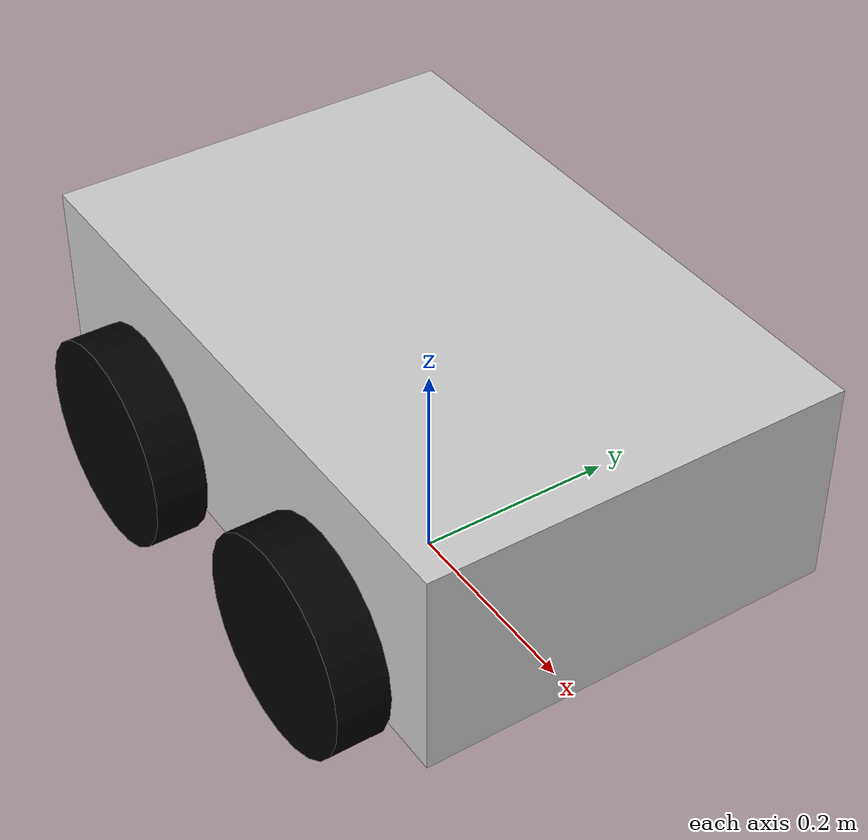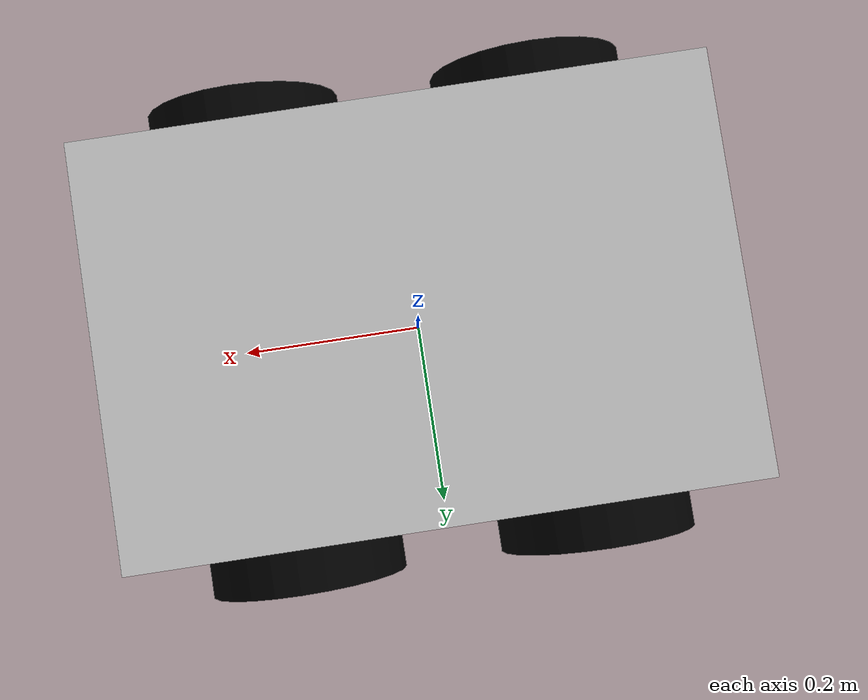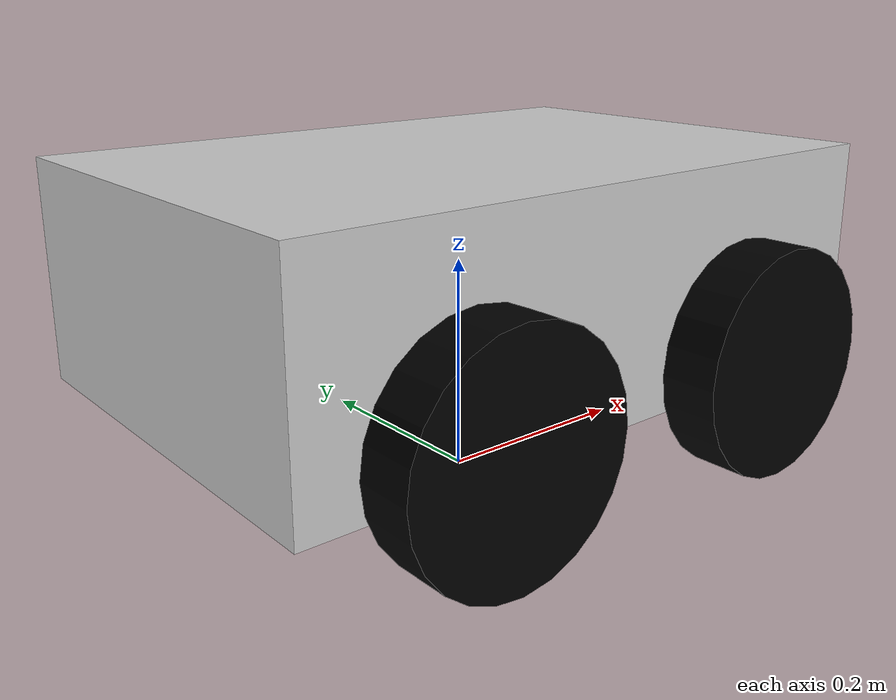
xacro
<?xml version="1.0"?>
<robot name="car" xmlns:xacro="http://www.ros.org/wiki/xacro">

    <xacro:include filename="$(find car_description)/urdf/properties.xacro"/>
    <xacro:include filename="$(find car_description)/urdf/ros2_control.xacro"/>

    <xacro:property name="base_length" value="0.6" />
    <xacro:property name="base_width" value="0.4" />
    <xacro:property name="base_height" value="0.2" />
    <xacro:property name="wheel_radius" value="0.1" />
    <xacro:property name="wheel_length" value="0.05" />

    <xacro:macro name="wheel_link" params="prefix">
        <link name="${prefix}_wheel_link">
            <visual>
                <geometry>
                    <cylinder radius="${wheel_radius}" length="${wheel_length}" />
                </geometry>
                <origin xyz="0 0 0" rpy="${pi / 2.0} 0 0"/>
                <material name="black"/>
            </visual>
            <collision>
            <origin xyz="0 0 0" rpy="${pi / 2.0} 0 0"/>
            <geometry>
                <cylinder radius="${wheel_radius}" length="${wheel_length}"/>
            </geometry>
        </collision>
        <xacro:cylinder_inertia m="1.0" r="${wheel_radius}" h="${wheel_length}"
                                    o_xyz="0 0 0" o_rpy="${pi / 2.0} 0 0" />
        </link>
    </xacro:macro>

    <link name="base_link">
        <visual>
            <geometry>
                <box size="${base_length} ${base_width} ${base_height}"/>
            </geometry>
            <origin xyz="0 0 ${base_height / 2.0}" rpy="0 0 0" />
            <material name="gray"/>
        </visual>
        <collision>
            <geometry>
                <box size="${base_length} ${base_width / 2.0} ${base_height}"/>
            </geometry>
            <origin xyz="0 0 ${base_height / 2.0}" rpy="0 0 0" />
        </collision>
        <xacro:box_inertia m="5.0" x="${base_length}" y="${base_width}" z="${base_height}"
                           o_xyz="0 0 ${base_height / 2.0}" o_rpy="0 0 0" />
    </link>

    <xacro:wheel_link prefix="rightBack" />
    <xacro:wheel_link prefix="leftBack" />
    <xacro:wheel_link prefix="rightFront" />
    <xacro:wheel_link prefix="leftFront" />

    <!-- dummy link for fonrt wheel to steer -->
    <link name="rightFront_steer_link">
        <inertial>
        <origin xyz="0 0 0" rpy="0 0 0"/>
        <mass value="0.05"/>
        <inertia
            ixx="0.00001" ixy="0.0" ixz="0.0"
            iyy="0.00001" iyz="0.0"
            izz="0.00001"/>
        </inertial>
    </link>
    <link name="leftFront_steer_link">
        <inertial>
        <origin xyz="0 0 0" rpy="0 0 0"/>
        <mass value="0.05"/>
        <inertia
            ixx="0.00001" ixy="0.0" ixz="0.0"
            iyy="0.00001" iyz="0.0"
            izz="0.00001"/>
        </inertial>
    </link>
    <link name="base_footprint" />

    <joint name="base_rightBack_wheel_joint" type="continuous">
        <parent link="base_link" />
        <child link="rightBack_wheel_link" />
        <origin xyz="${-base_length / 4.0} ${-(base_width + wheel_length) / 2.0} ${base_height / 6}" rpy="0 0 0"/>
        <axis xyz="0 1 0" />
    </joint>
    <joint name="base_leftBack_wheel_joint" type="continuous">
        <parent link="base_link" />
        <child link="leftBack_wheel_link" />
        <origin xyz="${-base_length / 4.0} ${(base_width + wheel_length) / 2.0} ${base_height / 6}" rpy="0 0 0"/>
        <axis xyz="0 1 0" />
    </joint>
    <joint name="base_rightFront_steer_joint" type="revolute">
        <parent link="base_link"/>
        <child link="rightFront_steer_link" />
        <origin xyz="${base_length / 4.0} ${-(base_width + wheel_length) / 2.0} ${base_height / 6}" rpy="0 0 0"/>
        <axis xyz="0 0 1" />
        <limit lower="-0.6" upper="0.6" effort="10.0" velocity="2.0"/>
    </joint>
    <joint name="base_rightFront_wheel_joint" type="continuous">
        <parent link="rightFront_steer_link" />
        <child link="rightFront_wheel_link" />
        <origin xyz="0 0 0" rpy="0 0 0"/>
        <axis xyz="0 1 0" />
    </joint>
    <joint name="base_leftFront_steer_joint" type="revolute">
        <parent link="base_link"/>
        <child link="leftFront_steer_link" />
        <origin xyz="${base_length / 4.0} ${(base_width + wheel_length) / 2.0} ${base_height / 6}" rpy="0 0 0"/>
        <axis xyz="0 0 1" />
        <limit lower="-0.6" upper="0.6" effort="10.0" velocity="2.0"/>
    </joint>
    <joint name="base_leftFront_wheel_joint" type="continuous">
        <parent link="leftFront_steer_link" />
        <child link="leftFront_wheel_link" />
        <origin xyz="0 0 0" rpy="0 0 0"/>
        <axis xyz="0 1 0" />
    </joint>
    <joint name="base_joint" type="fixed">
        <parent link="base_footprint" />
        <child link="base_link" />
        <origin xyz="0 0 ${wheel_radius}" />
    </joint>
</robot>

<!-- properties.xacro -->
<robot name="car" xmlns:xacro="http://www.ros.org/wiki/xacro">
    <material name="gray">
        <color rgba="0.8 0.8 0.8 1"/>
    </material>
    <material name="black">
        <color rgba="0.0 0.0 0.0 1"/>
    </material>

    <xacro:macro name="box_inertia" params="m x y z o_xyz o_rpy">
        <inertial>
            <mass value="${m}" />
            <origin xyz="${o_xyz}" rpy="${o_rpy}" />
            <inertia ixx="${m*(y*y+z*z)/12}" ixy="0" ixz="0"
                     iyy="${m*(x*x+z*z)/12}" iyz="0"
                     izz="${m*(y*y+x*x)/12}" />
        </inertial>
    </xacro:macro>

    <xacro:macro name="cylinder_inertia" params="m r h o_xyz o_rpy">
        <inertial>
            <mass value="${m}" />
            <origin xyz="${o_xyz}" rpy="${o_rpy}" />
            <inertia ixx="${m*(3*r*r+h*h)/12}" ixy="0" ixz="0"
                     iyy="${m*(3*r*r+h*h)/12}" iyz="0"
                     izz="${m*r*r/2}" />
        </inertial>
    </xacro:macro>

    <xacro:macro name="sphere_inertia" params="m r o_xyz o_rpy">
        <inertial>
            <mass value="${m}" />
            <origin xyz="${o_xyz}" rpy="${o_rpy}" />
            <inertia ixx="${0.4*m*r*r}" ixy="0" ixz="0"
                     iyy="${0.4*m*r*r}" iyz="0"
                     izz="${0.4*m*r*r}" />
        </inertial>
    </xacro:macro>
</robot>
